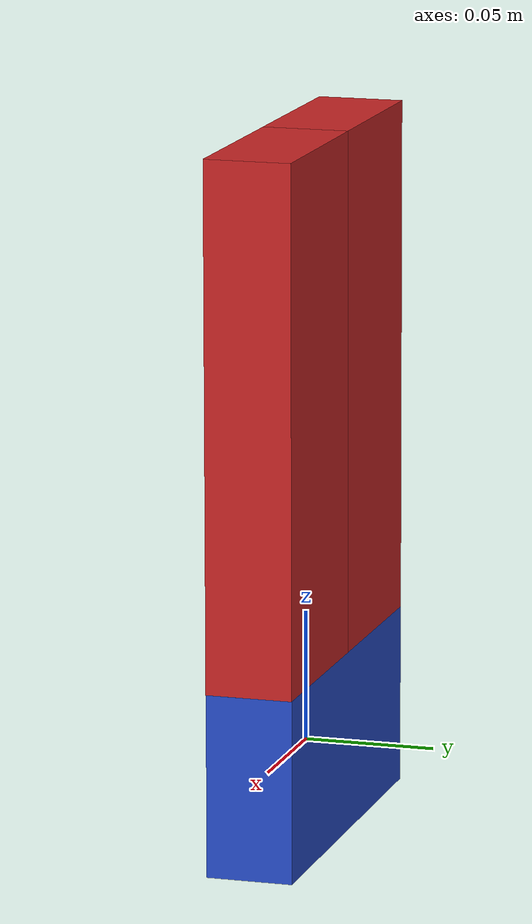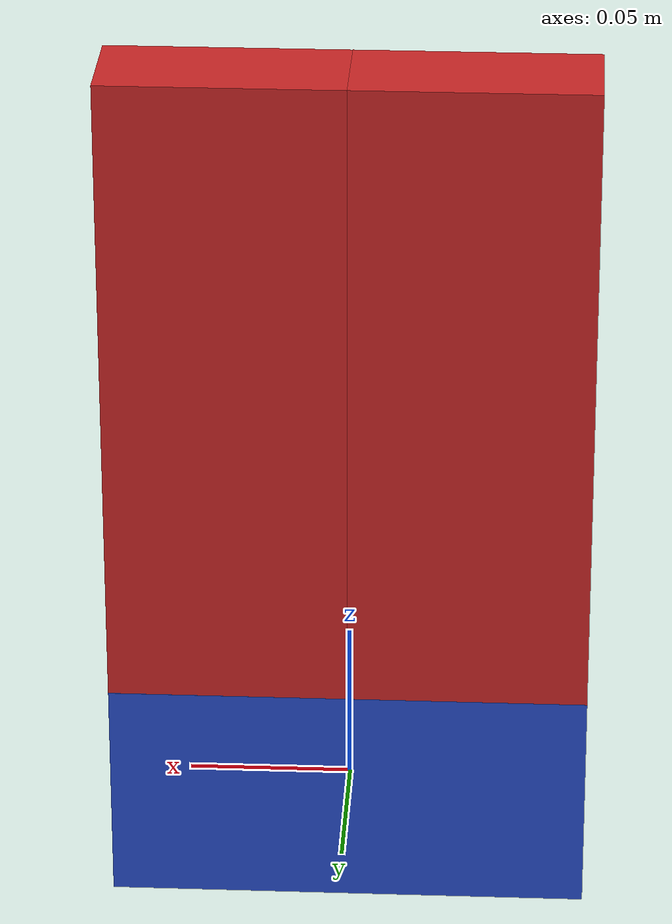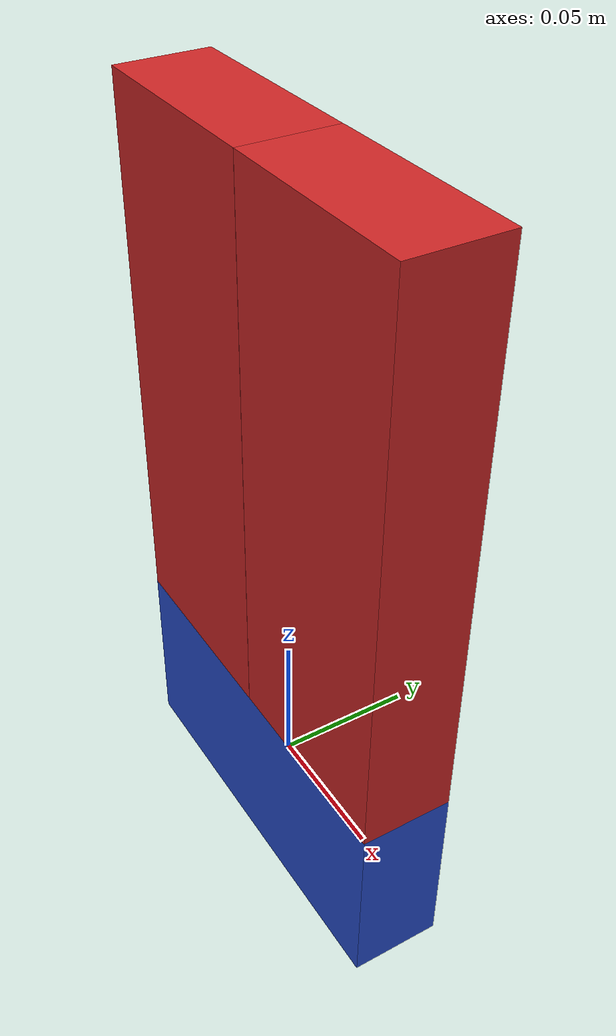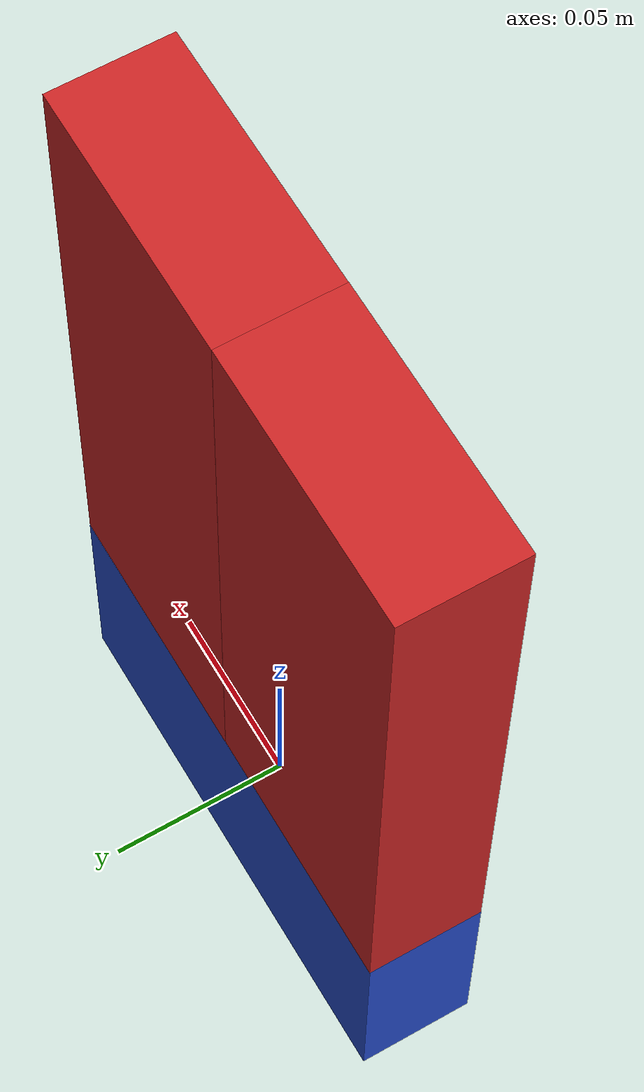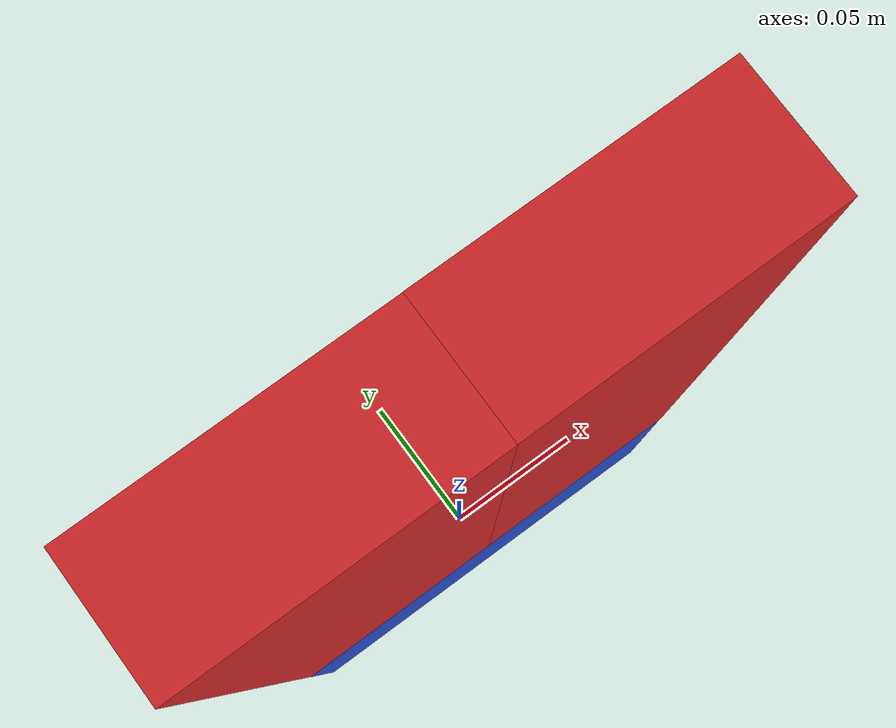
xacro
<?xml version="1.0"?>
<robot xmlns:xacro="http://www.ros.org/wiki/xacro">

    <link name="gripper_claw_link">
        <visual>
            <geometry>
                <box size="0.033 0.14759 0.070"/>
            </geometry>
            <origin xyz="0 0 0" rpy="0 0 -1.57"/>
            <material name="blue"/>
        </visual>
        <collision>
            <geometry>
                <box size="0.033 0.14759 0.070"/>
            </geometry>
            <material name="blue"/>
        </collision>
    </link>

    <link name="right_claw_link">
        <visual>
            <geometry>
                <box size="0.033 0.073795 0.200"/>
            </geometry>
            <origin xyz="0 0 0" rpy="0 0 1.57"/>
            <material name="red"/>
        </visual>
        <collision>
            <geometry>
                <box size="0.033 0.073795 0.200"/>
            </geometry>
            <material name="red"/>
        </collision>
    </link>

    <link name="left_claw_link">
        <visual>
            <geometry>
                <box size="0.033 0.073795 0.200"/>
            </geometry>
            <origin xyz="0 0 0" rpy="0 0 1.57"/>
            <material name="red"/>
        </visual>
        <collision>
            <geometry>
                <box size="0.033 0.073795 0.200"/>
            </geometry>
            <material name="red"/>
        </collision>
    </link>

    <joint name="right_finger" type="prismatic">
        <parent link="gripper_claw_link"/>
        <child link="right_claw_link"/>
        <origin xyz="0.036895 0 0.135" rpy="0 0 0"/>
        <axis xyz="0 1 0"/>
        <limit lower="0.0" upper="0.033" effort="100.0" velocity="1.0"/>
    </joint>

    <joint name="left_finger" type="prismatic">
        <parent link="gripper_claw_link"/>
        <child link="left_claw_link"/>
        <origin xyz="-0.036895 0 0.135" rpy="0 0 0"/>
        <axis xyz="0 1 0"/>
        <mimic joint="right_finger" multiplier="-1.0"/>
        <limit lower="-0.033" upper="0.0" effort="100.0" velocity="1.0"/>
    </joint>

</robot>
